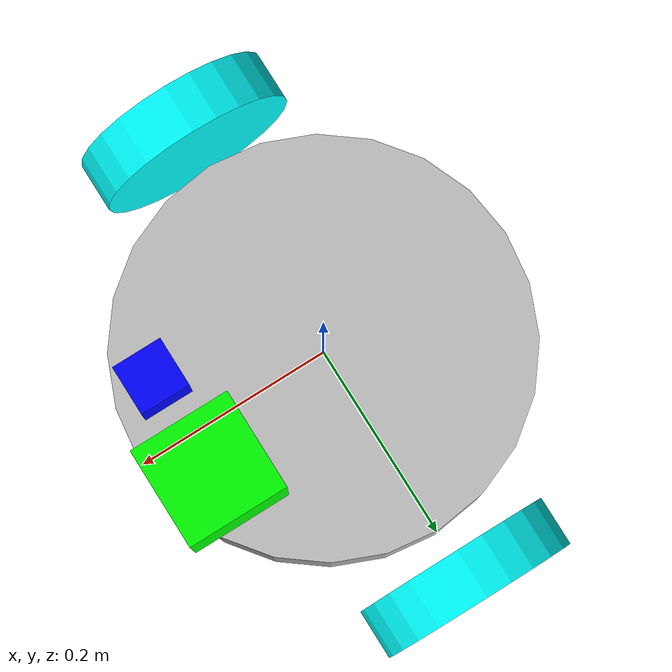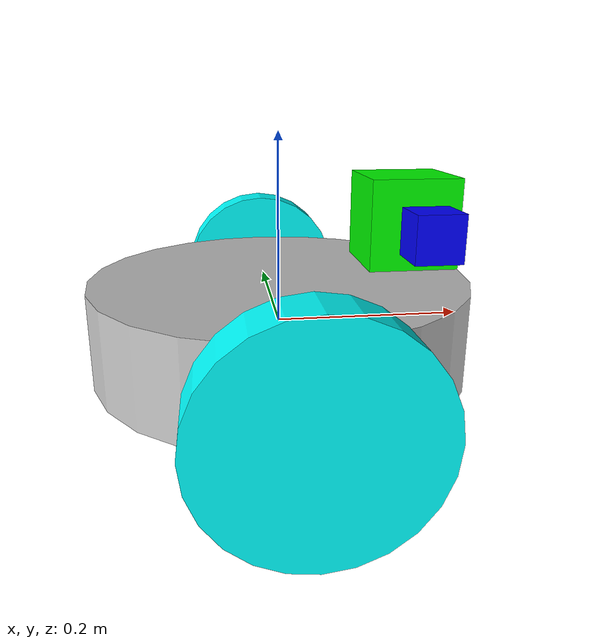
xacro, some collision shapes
<?xml version='1.0'?>

<robot name="ellie_bot" xmlns:xacro="http://www.ros.org/wiki/xacro">

<xacro:include filename="$(find slam_project)/urdf/ellie_bot.gazebo" />

<link name="robot_footprint"></link>

  <joint name="robot_footprint_joint" type="fixed">
    <origin xyz="0 0 0" rpy="0 0 0" />
    <parent link="robot_footprint"/>
    <child link="chassis" />
  </joint>

  <link name='chassis'>
    <pose>0 0 0.1 0 0 0</pose>

    <inertial>
      <mass value="15.0"/>
      <origin xyz="0.0 0 0" rpy=" 0 0 0"/>
      <inertia
          ixx="1.0" ixy="0" ixz="0"
          iyy="1.0" iyz="0"
          izz="0.3"
      />
    </inertial>

    <collision name='collision'>
      <origin xyz="0 0 0" rpy=" 0 0 0"/>
      <geometry>
          <cylinder length="0.1" radius="0.2"/>
      </geometry>
    </collision>

    <visual name='chassis_visual'>
      <origin xyz="0 0 0" rpy=" 0 0 0"/>
      <geometry>
        <cylinder length="0.1" radius="0.2"/>
      </geometry>
      <material name="">
        <color rgba="0.75294 0.75294 0.75294 1"/>
      </material>
    </visual>

    <collision name='back_caster_collision'>
      <origin xyz="-0.15 0 -0.05" rpy=" 0 0 0"/>
      <geometry>
        <sphere radius="0.045"/>
      </geometry>
      <surface>
        <friction>
          <ode>
            <mu>0</mu>
            <mu2>0</mu2>
            <slip1>1.0</slip1>
            <slip2>1.0</slip2>
          </ode>
        </friction>
      </surface>
    </collision>

    <visual name='back_caster_visual'>
      <origin xyz="-0.15 0 -0.05" rpy=" 0 0 0"/>
      <geometry>
        <sphere radius="0.045"/>
      </geometry>
    </visual>

    <collision name='front_caster_collision'>
      <origin xyz="0.15 0 -0.05" rpy=" 0 0 0"/>
      <geometry>
        <sphere radius="0.045"/>
      </geometry>
      <surface>
        <friction>
          <ode>
            <mu>0</mu>
            <mu2>0</mu2>
            <slip1>1.0</slip1>
            <slip2>1.0</slip2>
          </ode>
        </friction>
      </surface>
    </collision>

    <visual name='front_caster_visual'>
      <origin xyz="0.15 0 -0.05" rpy=" 0 0 0"/>
      <geometry>
        <sphere radius="0.045"/>
      </geometry>
    </visual>

  </link>

 <link name='left_wheel'>

	<inertial>
		<mass value = "5.0"/>
		<origin xyz="0.0 0 0" rpy=" 0 1.5707 1.5707"/>
        	<inertia
          	ixx="0.08125" ixy="0" ixz="0"
          	iyy="0.025" iyz="0"
          	izz="0.08125"
        	/>
	</inertial>

	 <collision name='collision'>
	      <origin xyz="0 0 0" rpy=" 0 1.5707 1.5707"/>
	      <geometry>
		<cylinder length="0.05" radius="0.1"/>
	      </geometry>
	 </collision>

	    <visual name='chassis_visual'>
	      <origin xyz="0 0 0" rpy="0 1.5707 1.5707"/>
	      <geometry>
		<cylinder length="0.05" radius="0.1"/>
	      </geometry>
	      <material name="Cyan">
		<color rgba="0 1.0 1.0 1.0"/>
	      </material>
	    </visual>
</link>

<joint type="continuous" name="left_wheel_hinge">
    <origin xyz="0 0.25 0" rpy="0 0 0"/>
    <child link="left_wheel"/>
    <parent link="chassis"/>
    <axis xyz="0 1 0" rpy="0 0 0"/>
    <limit effort="10000" velocity="1000"/>
    <joint_properties damping="1.0" friction="1.0"/>
</joint>

 <link name='right_wheel'>

	<inertial>
		<mass value = "5.0"/>
		<origin xyz="0 0 0" rpy=" 0 1.5707 1.5707"/>
        	<inertia
          	ixx="0.08125" ixy="0" ixz="0"
          	iyy="0.025" iyz="0"
          	izz="0.08125"
        	/>
	</inertial>

	 <collision name='collision'>
	      <origin xyz="0 0 0" rpy=" 0 1.5707 1.5707"/>
	      <geometry>
		<cylinder length="0.05" radius="0.1"/>
	      </geometry>
	 </collision>

	    <visual name='chassis_visual'>
	      <origin xyz="0 0 0" rpy=" 0 1.5707 1.5707"/>
	      <geometry>
		<cylinder length="0.05" radius="0.1"/>
	      </geometry>
	      <material name="Cyan">
		<color rgba="0 1.0 1.0 1.0"/>
	      </material>
	    </visual>

</link>

<joint type="continuous" name="right_wheel_hinge">
    <origin xyz="0 -0.25 0" rpy="0 0 0"/>
    <child link="right_wheel"/>
    <parent link="chassis"/>
    <axis xyz="0 1 0" rpy="0 0 0"/>
    <limit effort="10000" velocity="1000"/>
    <joint_properties damping="1.0" friction="1.0"/>
 </joint>

<link name='camera'>
	<inertial>
		<mass value = "0.1"/>
		<origin xyz="0 0 0" rpy=" 0 0 0"/>
        	<inertia
          	ixx="1e-6" ixy="0" ixz="0"
          	iyy="1e-6" iyz="0" izz="1e-6"
        	/>
	</inertial>

	 <collision name='collision'>
	      <origin xyz="0 0 0" rpy=" 0 0 0"/>
	      <geometry>
		<box size="0.05 0.05 0.05"/>
	      </geometry>
	 </collision>

	    <visual name='chassis_visual'>
	      <origin xyz="0 0 0" rpy=" 0 0 0"/>
	      <geometry>
		<box size="0.05 0.05 0.05"/>
	      </geometry>
              <material name="Blue">
		<color rgba="0 0 1.0 1.0"/>
	      </material>
	    </visual>
</link>

<joint type="fixed" name="camera_joint">
    <origin xyz="0.15 -0.05 0.1" rpy="0 0 0"/>
    <child link="camera"/>
    <parent link="chassis"/>
</joint>

  <joint name="camera_rgbd_joint" type="fixed">
    <origin xyz="0 0 0" rpy="-1.5707 0 -1.5707" />
    <parent link="camera" />
    <child link="camera_rgbd_frame" />
  </joint>

  <link name="camera_rgbd_frame">
    <inertial>
      <mass value="0.001" />
      <origin xyz="0 0 0" />
      <inertia ixx="0.0001" ixy="0.0" ixz="0.0"
        iyy="0.0001" iyz="0.0"
        izz="0.0001" />
    </inertial>
  </link>

<link name='hokuyo'>

	<inertial>
		<mass value = "0.1"/>
		<origin xyz="0 0 0" rpy=" 0 0 0"/>
        	<inertia
          	ixx="1e-6" ixy="0" ixz="0"
          	iyy="1e-6" iyz="0" izz="1e-6"
        	/>
	</inertial>

	 <collision name='collision'>
	      <origin xyz="0 0 0" rpy=" 0 0 0"/>
	      <geometry>
		 <box size="0.1 0.1 0.1"/>
	      </geometry>
	 </collision>

	    <visual name='chassis_visual'>
	      <origin xyz="0 0 0" rpy=" 0 0 0"/>
	      <geometry>
		<mesh filename="package://slam_project/meshes/hokuyo.dae"/>
	      </geometry>
  	      <material name="Green">
		<color rgba="0 1.0 0 1.0"/>
	      </material>
	    </visual>
</link>

<joint type="fixed" name="hokuyo_joint">
    <origin xyz="0.15 0.05 0.1" rpy="0 0 0"/>
    <child link="hokuyo"/>
    <parent link="chassis"/>
</joint>

</robot>
